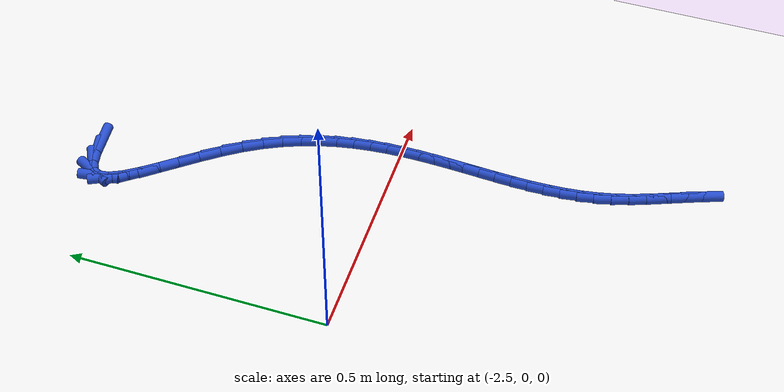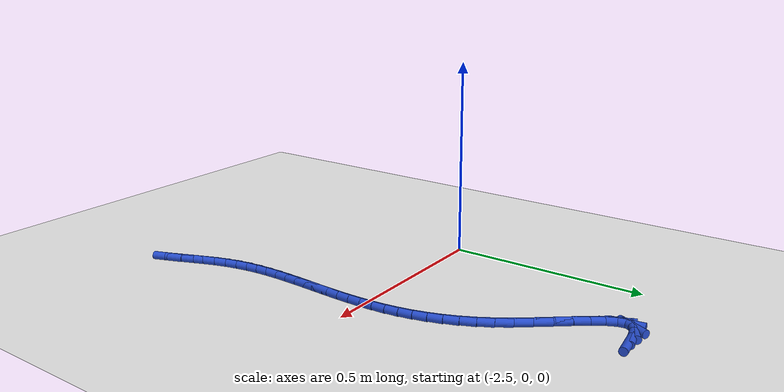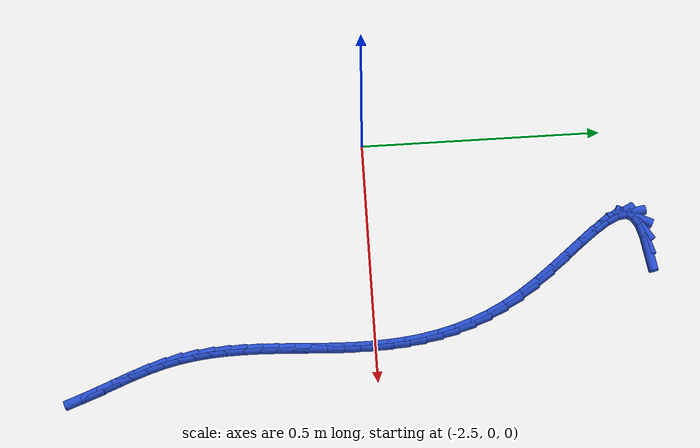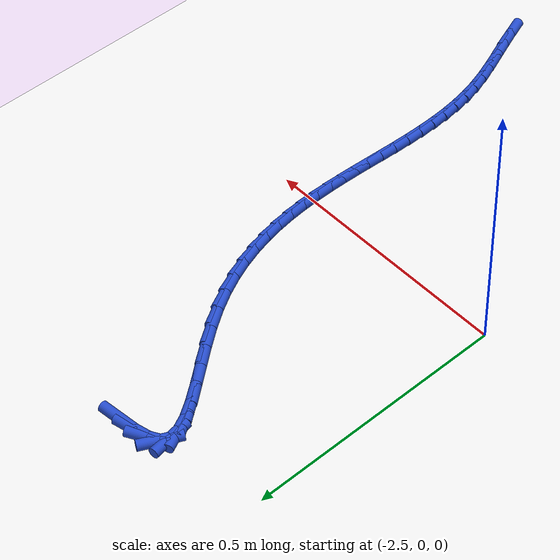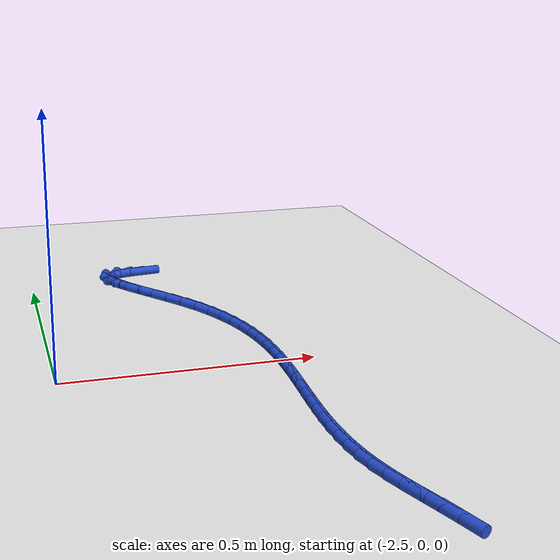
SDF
<sdf version="1.6">
 <world name="default">
  <model name="ground_plane">
   <static>1</static>
   <link name="link">
    <collision name="collision">
     <geometry><plane><normal>0 0 1</normal><size>100 100</size></plane></geometry>
     <surface><friction><ode><mu>100</mu><mu2>50</mu2></ode></friction></surface>
    </collision>
    <visual name="visual">
     <cast_shadows>0</cast_shadows>
     <geometry><plane><normal>0 0 1</normal><size>100 100</size></plane></geometry>
     <material>
      <script><uri>file://media/materials/scripts/gazebo.material</uri><name>Gazebo/WhiteGlow</name></script>
     </material>
    </visual>
   </link>
  </model>
  <model name="line">
   <link name="link_99">
    <pose>-2.2294263877807357 0.5650078776608407 0.01 0 1.57 0.11645014825898799</pose>
    <collision name="collision">
     <geometry><cylinder><radius>0.01</radius><length>0.08</length></cylinder></geometry>
    </collision>
    <visual name="visual">
     <material>
      <script><name>Gazebo/Blue</name><uri>file://media/materials/scripts/gazebo.material</uri></script>
     </material>
     <geometry><cylinder><radius>0.01</radius><length>0.08</length></cylinder></geometry>
    </visual>
   </link>
   <link name="link_100">
    <pose>-2.2625811041861215 0.5611294588739613 0.01 0 1.57 0.2323916652500865</pose>
    <collision name="collision">
     <geometry><cylinder><radius>0.01</radius><length>0.08</length></cylinder></geometry>
    </collision>
    <visual name="visual">
     <material>
      <script><name>Gazebo/Blue</name><uri>file://media/materials/scripts/gazebo.material</uri></script>
     </material>
     <geometry><cylinder><radius>0.01</radius><length>0.08</length></cylinder></geometry>
    </visual>
   </link>
   <link name="link_101">
    <pose>-2.289091204509638 0.5548553779961213 0.01 0 1.57 0.5052259116705955</pose>
    <collision name="collision">
     <geometry><cylinder><radius>0.01</radius><length>0.08</length></cylinder></geometry>
    </collision>
    <visual name="visual">
     <material>
      <script><name>Gazebo/Blue</name><uri>file://media/materials/scripts/gazebo.material</uri></script>
     </material>
     <geometry><cylinder><radius>0.01</radius><length>0.08</length></cylinder></geometry>
    </visual>
   </link>
   <link name="link_102">
    <pose>-2.3069327894133207 0.5449870627534397 0.01 0 1.57 1.1047856339930515</pose>
    <collision name="collision">
     <geometry><cylinder><radius>0.01</radius><length>0.08</length></cylinder></geometry>
    </collision>
    <visual name="visual">
     <material>
      <script><name>Gazebo/Blue</name><uri>file://media/materials/scripts/gazebo.material</uri></script>
     </material>
     <geometry><cylinder><radius>0.01</radius><length>0.08</length></cylinder></geometry>
    </visual>
   </link>
   <link name="link_103">
    <pose>-2.314262796681098 0.5304132480904717 0.01 0 1.57 -1.4248529612716305</pose>
    <collision name="collision">
     <geometry><cylinder><radius>0.01</radius><length>0.08</length></cylinder></geometry>
    </collision>
    <visual name="visual">
     <material>
      <script><name>Gazebo/Blue</name><uri>file://media/materials/scripts/gazebo.material</uri></script>
     </material>
     <geometry><cylinder><radius>0.01</radius><length>0.08</length></cylinder></geometry>
    </visual>
   </link>
   <link name="link_104">
    <pose>-2.3114204862621652 0.5110762827009169 0.01 0 1.57 -1.1243849591914743</pose>
    <collision name="collision">
     <geometry><cylinder><radius>0.01</radius><length>0.08</length></cylinder></geometry>
    </collision>
    <visual name="visual">
     <material>
      <script><name>Gazebo/Blue</name><uri>file://media/materials/scripts/gazebo.material</uri></script>
     </material>
     <geometry><cylinder><radius>0.01</radius><length>0.08</length></cylinder></geometry>
    </visual>
   </link>
   <link name="link_105">
    <pose>-2.300192055355368 0.4876170890292454 0.01 0 1.57 -0.9866487773566647</pose>
    <collision name="collision">
     <geometry><cylinder><radius>0.01</radius><length>0.08</length></cylinder></geometry>
    </collision>
    <visual name="visual">
     <material>
      <script><name>Gazebo/Blue</name><uri>file://media/materials/scripts/gazebo.material</uri></script>
     </material>
     <geometry><cylinder><radius>0.01</radius><length>0.08</length></cylinder></geometry>
    </visual>
   </link>
   <link name="link_106">
    <pose>-2.282389630482298 0.4606891080615917 0.01 0 1.57 -0.9217924695268629</pose>
    <collision name="collision">
     <geometry><cylinder><radius>0.01</radius><length>0.08</length></cylinder></geometry>
    </collision>
    <visual name="visual">
     <material>
      <script><name>Gazebo/Blue</name><uri>file://media/materials/scripts/gazebo.material</uri></script>
     </material>
     <geometry><cylinder><radius>0.01</radius><length>0.08</length></cylinder></geometry>
    </visual>
   </link>
   <link name="link_107">
    <pose>-2.259825338164548 0.4309457807840901 0.01 0 1.57 -0.8962494504573224</pose>
    <collision name="collision">
     <geometry><cylinder><radius>0.01</radius><length>0.08</length></cylinder></geometry>
    </collision>
    <visual name="visual">
     <material>
      <script><name>Gazebo/Blue</name><uri>file://media/materials/scripts/gazebo.material</uri></script>
     </material>
     <geometry><cylinder><radius>0.01</radius><length>0.08</length></cylinder></geometry>
    </visual>
   </link>
   <link name="link_108">
    <pose>-2.234311304923708 0.39904054818287477 0.01 0 1.57 -0.8975043629468216</pose>
    <collision name="collision">
     <geometry><cylinder><radius>0.01</radius><length>0.08</length></cylinder></geometry>
    </collision>
    <visual name="visual">
     <material>
      <script><name>Gazebo/Blue</name><uri>file://media/materials/scripts/gazebo.material</uri></script>
     </material>
     <geometry><cylinder><radius>0.01</radius><length>0.08</length></cylinder></geometry>
    </visual>
   </link>
   <link name="link_109">
    <pose>-2.2076596572813703 0.36562685124408073 0.01 0 1.57 -0.9221680583720985</pose>
    <collision name="collision">
     <geometry><cylinder><radius>0.01</radius><length>0.08</length></cylinder></geometry>
    </collision>
    <visual name="visual">
     <material>
      <script><name>Gazebo/Blue</name><uri>file://media/materials/scripts/gazebo.material</uri></script>
     </material>
     <geometry><cylinder><radius>0.01</radius><length>0.08</length></cylinder></geometry>
    </visual>
   </link>
   <link name="link_110">
    <pose>-2.1816825217591265 0.33135813095384203 0.01 0 1.57 -0.9723415615055687</pose>
    <collision name="collision">
     <geometry><cylinder><radius>0.01</radius><length>0.08</length></cylinder></geometry>
    </collision>
    <visual name="visual">
     <material>
      <script><name>Gazebo/Blue</name><uri>file://media/materials/scripts/gazebo.material</uri></script>
     </material>
     <geometry><cylinder><radius>0.01</radius><length>0.08</length></cylinder></geometry>
    </visual>
   </link>
   <link name="link_111">
    <pose>-2.158174428950617 0.29688225195712536 0.01 0 1.57 -1.0414275403442121</pose>
    <collision name="collision">
     <geometry><cylinder><radius>0.01</radius><length>0.08</length></cylinder></geometry>
    </collision>
    <visual name="visual">
     <material>
      <script><name>Gazebo/Blue</name><uri>file://media/materials/scripts/gazebo.material</uri></script>
     </material>
     <geometry><cylinder><radius>0.01</radius><length>0.08</length></cylinder></geometry>
    </visual>
   </link>
   <link name="link_112">
    <pose>-2.138109345272268 0.26258703317609877 0.01 0 1.57 -1.11292488946238</pose>
    <collision name="collision">
     <geometry><cylinder><radius>0.01</radius><length>0.08</length></cylinder></geometry>
    </collision>
    <visual name="visual">
     <material>
      <script><name>Gazebo/Blue</name><uri>file://media/materials/scripts/gazebo.material</uri></script>
     </material>
     <geometry><cylinder><radius>0.01</radius><length>0.08</length></cylinder></geometry>
    </visual>
   </link>
   <link name="link_113">
    <pose>-2.1213088126067117 0.228495077649541 0.01 0 1.57 -1.184113717157169</pose>
    <collision name="collision">
     <geometry><cylinder><radius>0.01</radius><length>0.08</length></cylinder></geometry>
    </collision>
    <visual name="visual">
     <material>
      <script><name>Gazebo/Blue</name><uri>file://media/materials/scripts/gazebo.material</uri></script>
     </material>
     <geometry><cylinder><radius>0.01</radius><length>0.08</length></cylinder></geometry>
    </visual>
   </link>
   <link name="link_114">
    <pose>-2.1075079955218188 0.194601614504628 0.01 0 1.57 -1.2535206687780194</pose>
    <collision name="collision">
     <geometry><cylinder><radius>0.01</radius><length>0.08</length></cylinder></geometry>
    </collision>
    <visual name="visual">
     <material>
      <script><name>Gazebo/Blue</name><uri>file://media/materials/scripts/gazebo.material</uri></script>
     </material>
     <geometry><cylinder><radius>0.01</radius><length>0.08</length></cylinder></geometry>
    </visual>
   </link>
   <link name="link_115">
    <pose>-2.09644205858546 0.16090187286853574 0.01 0 1.57 -1.319698953891404</pose>
    <collision name="collision">
     <geometry><cylinder><radius>0.01</radius><length>0.08</length></cylinder></geometry>
    </collision>
    <visual name="visual">
     <material>
      <script><name>Gazebo/Blue</name><uri>file://media/materials/scripts/gazebo.material</uri></script>
     </material>
     <geometry><cylinder><radius>0.01</radius><length>0.08</length></cylinder></geometry>
    </visual>
   </link>
   <link name="link_116">
    <pose>-2.087846166365508 0.12739108186844159 0.01 0 1.57 -1.3813370636360354</pose>
    <collision name="collision">
     <geometry><cylinder><radius>0.01</radius><length>0.08</length></cylinder></geometry>
    </collision>
    <visual name="visual">
     <material>
      <script><name>Gazebo/Blue</name><uri>file://media/materials/scripts/gazebo.material</uri></script>
     </material>
     <geometry><cylinder><radius>0.01</radius><length>0.08</length></cylinder></geometry>
    </visual>
   </link>
   <link name="link_117">
    <pose>-2.081455483429832 0.09406447063152149 0.01 0 1.57 -1.4373354414771653</pose>
    <collision name="collision">
     <geometry><cylinder><radius>0.01</radius><length>0.08</length></cylinder></geometry>
    </collision>
    <visual name="visual">
     <material>
      <script><name>Gazebo/Blue</name><uri>file://media/materials/scripts/gazebo.material</uri></script>
     </material>
     <geometry><cylinder><radius>0.01</radius><length>0.08</length></cylinder></geometry>
    </visual>
   </link>
   <link name="link_118">
    <pose>-2.0770051743463043 0.060917268284951816 0.01 0 1.57 -1.4868402192798873</pose>
    <collision name="collision">
     <geometry><cylinder><radius>0.01</radius><length>0.08</length></cylinder></geometry>
    </collision>
    <visual name="visual">
     <material>
      <script><name>Gazebo/Blue</name><uri>file://media/materials/scripts/gazebo.material</uri></script>
     </material>
     <geometry><cylinder><radius>0.01</radius><length>0.08</length></cylinder></geometry>
    </visual>
   </link>
   <link name="link_119">
    <pose>-2.074230403682796 0.02794470395590868 0.01 0 1.57 -1.529236261762923</pose>
    <collision name="collision">
     <geometry><cylinder><radius>0.01</radius><length>0.08</length></cylinder></geometry>
    </collision>
    <visual name="visual">
     <material>
      <script><name>Gazebo/Blue</name><uri>file://media/materials/scripts/gazebo.material</uri></script>
     </material>
     <geometry><cylinder><radius>0.01</radius><length>0.08</length></cylinder></geometry>
    </visual>
   </link>
   <link name="link_120">
    <pose>-2.0728663360071775 -0.004857993228430762 0.01 0 1.57 -1.564110882310108</pose>
    <collision name="collision">
     <geometry><cylinder><radius>0.01</radius><length>0.08</length></cylinder></geometry>
    </collision>
    <visual name="visual">
     <material>
      <script><name>Gazebo/Blue</name><uri>file://media/materials/scripts/gazebo.material</uri></script>
     </material>
     <geometry><cylinder><radius>0.01</radius><length>0.08</length></cylinder></geometry>
    </visual>
   </link>
   <link name="link_121">
    <pose>-2.0726481358873206 -0.037495594140890404 0.01 0 1.57 1.5503900585296293</pose>
    <collision name="collision">
     <geometry><cylinder><radius>0.01</radius><length>0.08</length></cylinder></geometry>
    </collision>
    <visual name="visual">
     <material>
      <script><name>Gazebo/Blue</name><uri>file://media/materials/scripts/gazebo.material</uri></script>
     </material>
     <geometry><cylinder><radius>0.01</radius><length>0.08</length></cylinder></geometry>
    </visual>
   </link>
   <link name="link_122">
    <pose>-2.073310967891096 -0.06997286965429392 0.01 0 1.57 1.5312451624144572</pose>
    <collision name="collision">
     <geometry><cylinder><radius>0.01</radius><length>0.08</length></cylinder></geometry>
    </collision>
    <visual name="visual">
     <material>
      <script><name>Gazebo/Blue</name><uri>file://media/materials/scripts/gazebo.material</uri></script>
     </material>
     <geometry><cylinder><radius>0.01</radius><length>0.08</length></cylinder></geometry>
    </visual>
   </link>
   <link name="link_123">
    <pose>-2.074589996586375 -0.10229459064146482 0.01 0 1.57 1.5201606777170207</pose>
    <collision name="collision">
     <geometry><cylinder><radius>0.01</radius><length>0.08</length></cylinder></geometry>
    </collision>
    <visual name="visual">
     <material>
      <script><name>Gazebo/Blue</name><uri>file://media/materials/scripts/gazebo.material</uri></script>
     </material>
     <geometry><cylinder><radius>0.01</radius><length>0.08</length></cylinder></geometry>
    </visual>
   </link>
   <link name="link_124">
    <pose>-2.076220386541029 -0.13446552797522676 0.01 0 1.57 1.5172357423771745</pose>
    <collision name="collision">
     <geometry><cylinder><radius>0.01</radius><length>0.08</length></cylinder></geometry>
    </collision>
    <visual name="visual">
     <material>
      <script><name>Gazebo/Blue</name><uri>file://media/materials/scripts/gazebo.material</uri></script>
     </material>
     <geometry><cylinder><radius>0.01</radius><length>0.08</length></cylinder></geometry>
    </visual>
   </link>
   <link name="link_125">
    <pose>-2.0779373023229284 -0.166490452528404 0.01 0 1.57 1.5225768808018467</pose>
    <collision name="collision">
     <geometry><cylinder><radius>0.01</radius><length>0.08</length></cylinder></geometry>
    </collision>
    <visual name="visual">
     <material>
      <script><name>Gazebo/Blue</name><uri>file://media/materials/scripts/gazebo.material</uri></script>
     </material>
     <geometry><cylinder><radius>0.01</radius><length>0.08</length></cylinder></geometry>
    </visual>
   </link>
   <link name="link_126">
    <pose>-2.0794759084999455 -0.1983741351738186 0.01 0 1.57 1.5363042682532135</pose>
    <collision name="collision">
     <geometry><cylinder><radius>0.01</radius><length>0.08</length></cylinder></geometry>
    </collision>
    <visual name="visual">
     <material>
      <script><name>Gazebo/Blue</name><uri>file://media/materials/scripts/gazebo.material</uri></script>
     </material>
     <geometry><cylinder><radius>0.01</radius><length>0.08</length></cylinder></geometry>
    </visual>
   </link>
   <link name="link_127">
    <pose>-2.0805713696399493 -0.23012134678429486 0.01 0 1.57 1.5585409099545926</pose>
    <collision name="collision">
     <geometry><cylinder><radius>0.01</radius><length>0.08</length></cylinder></geometry>
    </collision>
    <visual name="visual">
     <material>
      <script><name>Gazebo/Blue</name><uri>file://media/materials/scripts/gazebo.material</uri></script>
     </material>
     <geometry><cylinder><radius>0.01</radius><length>0.08</length></cylinder></geometry>
    </visual>
   </link>
   <link name="link_128">
    <pose>-2.0809588503108136 -0.26173685823265647 0.01 0 1.57 -1.5522096587204672</pose>
    <collision name="collision">
     <geometry><cylinder><radius>0.01</radius><length>0.08</length></cylinder></geometry>
    </collision>
    <visual name="visual">
     <material>
      <script><name>Gazebo/Blue</name><uri>file://media/materials/scripts/gazebo.material</uri></script>
     </material>
     <geometry><cylinder><radius>0.01</radius><length>0.08</length></cylinder></geometry>
    </visual>
   </link>
   <link name="link_129">
    <pose>-2.080373515080408 -0.29322544039172693 0.01 0 1.57 -1.512742589040413</pose>
    <collision name="collision">
     <geometry><cylinder><radius>0.01</radius><length>0.08</length></cylinder></geometry>
    </collision>
    <visual name="visual">
     <material>
      <script><name>Gazebo/Blue</name><uri>file://media/materials/scripts/gazebo.material</uri></script>
     </material>
     <geometry><cylinder><radius>0.01</radius><length>0.08</length></cylinder></geometry>
    </visual>
   </link>
   <link name="link_130">
    <pose>-2.0785505285166037 -0.32459186413432983 0.01 0 1.57 -1.4647769157118589</pose>
    <collision name="collision">
     <geometry><cylinder><radius>0.01</radius><length>0.08</length></cylinder></geometry>
    </collision>
    <visual name="visual">
     <material>
      <script><name>Gazebo/Blue</name><uri>file://media/materials/scripts/gazebo.material</uri></script>
     </material>
     <geometry><cylinder><radius>0.01</radius><length>0.08</length></cylinder></geometry>
    </visual>
   </link>
   <link name="link_131">
    <pose>-2.075225055187272 -0.3558409003332888 0.01 0 1.57 -1.4086680268422411</pose>
    <collision name="collision">
     <geometry><cylinder><radius>0.01</radius><length>0.08</length></cylinder></geometry>
    </collision>
    <visual name="visual">
     <material>
      <script><name>Gazebo/Blue</name><uri>file://media/materials/scripts/gazebo.material</uri></script>
     </material>
     <geometry><cylinder><radius>0.01</radius><length>0.08</length></cylinder></geometry>
    </visual>
   </link>
   <link name="link_132">
    <pose>-2.0701322596602836 -0.3869773198614281 0.01 0 1.57 -1.34508375303982</pose>
    <collision name="collision">
     <geometry><cylinder><radius>0.01</radius><length>0.08</length></cylinder></geometry>
    </collision>
    <visual name="visual">
     <material>
      <script><name>Gazebo/Blue</name><uri>file://media/materials/scripts/gazebo.material</uri></script>
     </material>
     <geometry><cylinder><radius>0.01</radius><length>0.08</length></cylinder></geometry>
    </visual>
   </link>
   <link name="link_133">
    <pose>-2.063007311117884 -0.4180058939385114 0.01 0 1.57 -1.2799106566840708</pose>
    <collision name="collision">
     <geometry><cylinder><radius>0.01</radius><length>0.08</length></cylinder></geometry>
    </collision>
    <visual name="visual">
     <material>
      <script><name>Gazebo/Blue</name><uri>file://media/materials/scripts/gazebo.material</uri></script>
     </material>
     <geometry><cylinder><radius>0.01</radius><length>0.08</length></cylinder></geometry>
    </visual>
   </link>
   <link name="link_134">
    <pose>-2.053745309837768 -0.4489434185476968 0.01 0 1.57 -1.2311085294593282</pose>
    <collision name="collision">
     <geometry><cylinder><radius>0.01</radius><length>0.08</length></cylinder></geometry>
    </collision>
    <visual name="visual">
     <material>
      <script><name>Gazebo/Blue</name><uri>file://media/materials/scripts/gazebo.material</uri></script>
     </material>
     <geometry><cylinder><radius>0.01</radius><length>0.08</length></cylinder></geometry>
    </visual>
   </link>
   <link name="link_135">
    <pose>-2.0428232127953514 -0.47985043781942016 0.01 0 1.57 -1.2016463050534945</pose>
    <collision name="collision">
     <geometry><cylinder><radius>0.01</radius><length>0.08</length></cylinder></geometry>
    </collision>
    <visual name="visual">
     <material>
      <script><name>Gazebo/Blue</name><uri>file://media/materials/scripts/gazebo.material</uri></script>
     </material>
     <geometry><cylinder><radius>0.01</radius><length>0.08</length></cylinder></geometry>
    </visual>
   </link>
   <link name="link_136">
    <pose>-2.0308502613942125 -0.5107974419733671 0.01 0 1.57 -1.190523891179678</pose>
    <collision name="collision">
     <geometry><cylinder><radius>0.01</radius><length>0.08</length></cylinder></geometry>
    </collision>
    <visual name="visual">
     <material>
      <script><name>Gazebo/Blue</name><uri>file://media/materials/scripts/gazebo.material</uri></script>
     </material>
     <geometry><cylinder><radius>0.01</radius><length>0.08</length></cylinder></geometry>
    </visual>
   </link>
   <link name="link_137">
    <pose>-2.0184356970379276 -0.5418549212292225 0.01 0 1.57 -1.1971648010494347</pose>
    <collision name="collision">
     <geometry><cylinder><radius>0.01</radius><length>0.08</length></cylinder></geometry>
    </collision>
    <visual name="visual">
     <material>
      <script><name>Gazebo/Blue</name><uri>file://media/materials/scripts/gazebo.material</uri></script>
     </material>
     <geometry><cylinder><radius>0.01</radius><length>0.08</length></cylinder></geometry>
    </visual>
   </link>
   <link name="link_138">
    <pose>-2.006188761130075 -0.5730933658066723 0.01 0 1.57 -1.2214871057380874</pose>
    <collision name="collision">
     <geometry><cylinder><radius>0.01</radius><length>0.08</length></cylinder></geometry>
    </collision>
    <visual name="visual">
     <material>
      <script><name>Gazebo/Blue</name><uri>file://media/materials/scripts/gazebo.material</uri></script>
     </material>
     <geometry><cylinder><radius>0.01</radius><length>0.08</length></cylinder></geometry>
    </visual>
   </link>
  </model>
 </world>
</sdf>
